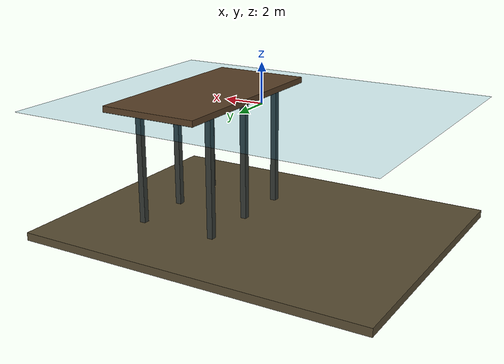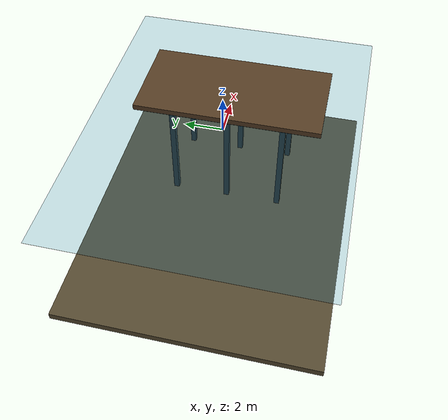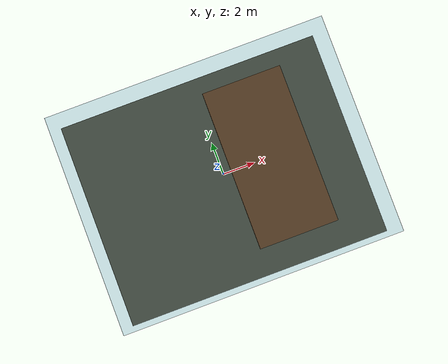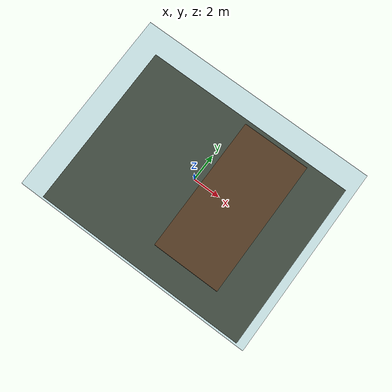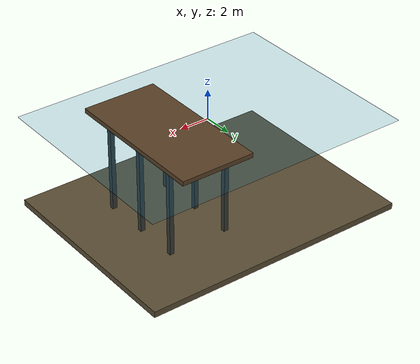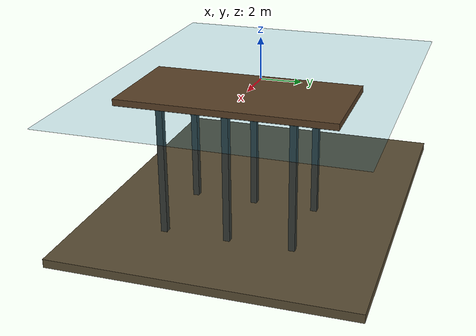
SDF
<?xml version='1.0' encoding='utf-8'?>
<sdf version="1.7">
  <world name="marine_harbor">
    <physics name="marine_physics" type="ode">
      <max_step_size>0.001</max_step_size>
      <real_time_factor>1</real_time_factor>
    </physics>
    <gravity>0 0 -9.81</gravity>
    <plugin filename="ignition-gazebo-physics-system" name="ignition::gazebo::systems::Physics" />
    <plugin filename="ignition-gazebo-user-commands-system" name="ignition::gazebo::systems::UserCommands" />
    <plugin filename="ignition-gazebo-scene-broadcaster-system" name="ignition::gazebo::systems::SceneBroadcaster" />
    <plugin filename="ignition-gazebo-sensors-system" name="ignition::gazebo::systems::Sensors">
      <render_engine>ogre2</render_engine>
    </plugin>
    <plugin filename="ignition-gazebo-imu-system" name="ignition::gazebo::systems::Imu" />
    <plugin filename="ignition-gazebo-buoyancy-system" name="ignition::gazebo::systems::Buoyancy">
      <graded_buoyancy>
        <default_density>1025</default_density>
        <density_change>
          <above_depth>0</above_depth>
          <density>1.225</density>
        </density_change>
      </graded_buoyancy>
      <enable>lab_rov</enable>
    </plugin>
    <!-- Fortress uses the explicit marine_sensors.py DVL/pressure/sonar model. -->
    <scene>
      <ambient>.3 .55 .6 1</ambient>
      <background>.05 .18 .25 1</background>
    </scene>
    <light name="sun" type="directional">
      <pose>0 0 10 0 0 0</pose>
      <diffuse>.8 .9 1 1</diffuse>
      <direction>-.3 .2 -1</direction>
    </light>
    <model name="seafloor">
      <static>true</static>
      <pose>0 0 -6.2 0 0 0</pose>
      <link name="link">
        <visual name="visual">
          <geometry>
            <box>
              <size>18 14 0.4</size>
            </box>
          </geometry>
          <material>
            <ambient>.35 .3 .2 1</ambient>
            <diffuse>.35 .3 .2 1</diffuse>
          </material>
        </visual>
        <collision name="collision">
          <geometry>
            <box>
              <size>18 14 0.4</size>
            </box>
          </geometry>
        </collision>
      </link>
    </model>
    <model name="water_surface">
      <static>true</static>
      <pose>0 0 0 0 0 0</pose>
      <link name="link">
        <visual name="visual">
          <geometry>
            <box>
              <size>18 14 0.015</size>
            </box>
          </geometry>
          <material>
            <ambient>0 .4 .6 .18</ambient>
            <diffuse>0 .4 .6 .18</diffuse>
          </material>
        </visual>
      </link>
    </model>
    <model name="dock">
      <static>true</static>
      <pose>3 0 0.15 0 0 0</pose>
      <link name="link">
        <visual name="visual">
          <geometry>
            <box>
              <size>5 10 0.3</size>
            </box>
          </geometry>
          <material>
            <ambient>.35 .25 .15 1</ambient>
            <diffuse>.35 .25 .15 1</diffuse>
          </material>
        </visual>
        <collision name="collision">
          <geometry>
            <box>
              <size>5 10 0.3</size>
            </box>
          </geometry>
        </collision>
      </link>
    </model>
    <model name="harbor_piling_0">
      <static>true</static>
      <pose>1 -3 -3 0 0 0</pose>
      <link name="link">
        <visual name="visual">
          <geometry>
            <box>
              <size>0.3 0.3 6</size>
            </box>
          </geometry>
          <material>
            <ambient>.2 .22 .2 1</ambient>
            <diffuse>.2 .22 .2 1</diffuse>
          </material>
        </visual>
        <collision name="collision">
          <geometry>
            <box>
              <size>0.3 0.3 6</size>
            </box>
          </geometry>
        </collision>
      </link>
    </model>
    <model name="harbor_piling_1">
      <static>true</static>
      <pose>1 0 -3 0 0 0</pose>
      <link name="link">
        <visual name="visual">
          <geometry>
            <box>
              <size>0.3 0.3 6</size>
            </box>
          </geometry>
          <material>
            <ambient>.2 .22 .2 1</ambient>
            <diffuse>.2 .22 .2 1</diffuse>
          </material>
        </visual>
        <collision name="collision">
          <geometry>
            <box>
              <size>0.3 0.3 6</size>
            </box>
          </geometry>
        </collision>
      </link>
    </model>
    <model name="harbor_piling_2">
      <static>true</static>
      <pose>1 3 -3 0 0 0</pose>
      <link name="link">
        <visual name="visual">
          <geometry>
            <box>
              <size>0.3 0.3 6</size>
            </box>
          </geometry>
          <material>
            <ambient>.2 .22 .2 1</ambient>
            <diffuse>.2 .22 .2 1</diffuse>
          </material>
        </visual>
        <collision name="collision">
          <geometry>
            <box>
              <size>0.3 0.3 6</size>
            </box>
          </geometry>
        </collision>
      </link>
    </model>
    <model name="harbor_piling_3">
      <static>true</static>
      <pose>5 -3 -3 0 0 0</pose>
      <link name="link">
        <visual name="visual">
          <geometry>
            <box>
              <size>0.3 0.3 6</size>
            </box>
          </geometry>
          <material>
            <ambient>.2 .22 .2 1</ambient>
            <diffuse>.2 .22 .2 1</diffuse>
          </material>
        </visual>
        <collision name="collision">
          <geometry>
            <box>
              <size>0.3 0.3 6</size>
            </box>
          </geometry>
        </collision>
      </link>
    </model>
    <model name="harbor_piling_4">
      <static>true</static>
      <pose>5 0 -3 0 0 0</pose>
      <link name="link">
        <visual name="visual">
          <geometry>
            <box>
              <size>0.3 0.3 6</size>
            </box>
          </geometry>
          <material>
            <ambient>.2 .22 .2 1</ambient>
            <diffuse>.2 .22 .2 1</diffuse>
          </material>
        </visual>
        <collision name="collision">
          <geometry>
            <box>
              <size>0.3 0.3 6</size>
            </box>
          </geometry>
        </collision>
      </link>
    </model>
    <model name="harbor_piling_5">
      <static>true</static>
      <pose>5 3 -3 0 0 0</pose>
      <link name="link">
        <visual name="visual">
          <geometry>
            <box>
              <size>0.3 0.3 6</size>
            </box>
          </geometry>
          <material>
            <ambient>.2 .22 .2 1</ambient>
            <diffuse>.2 .22 .2 1</diffuse>
          </material>
        </visual>
        <collision name="collision">
          <geometry>
            <box>
              <size>0.3 0.3 6</size>
            </box>
          </geometry>
        </collision>
      </link>
    </model>
  </world>
</sdf>
